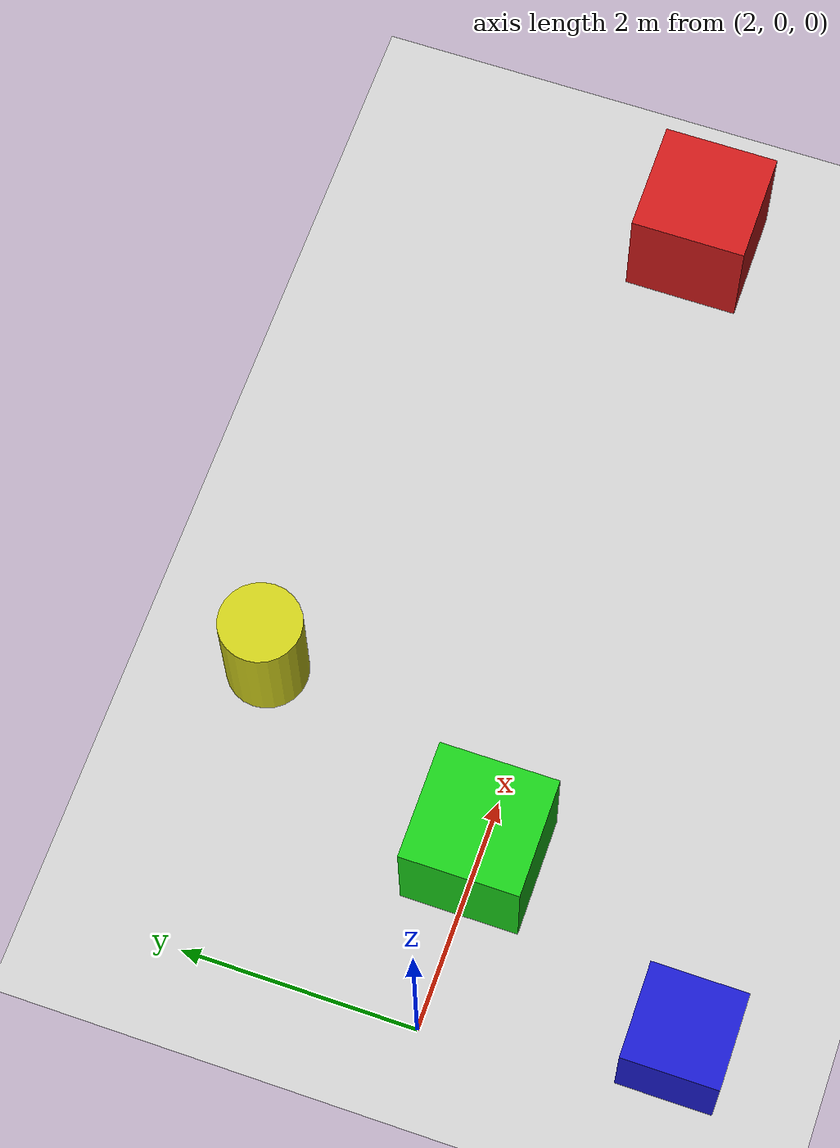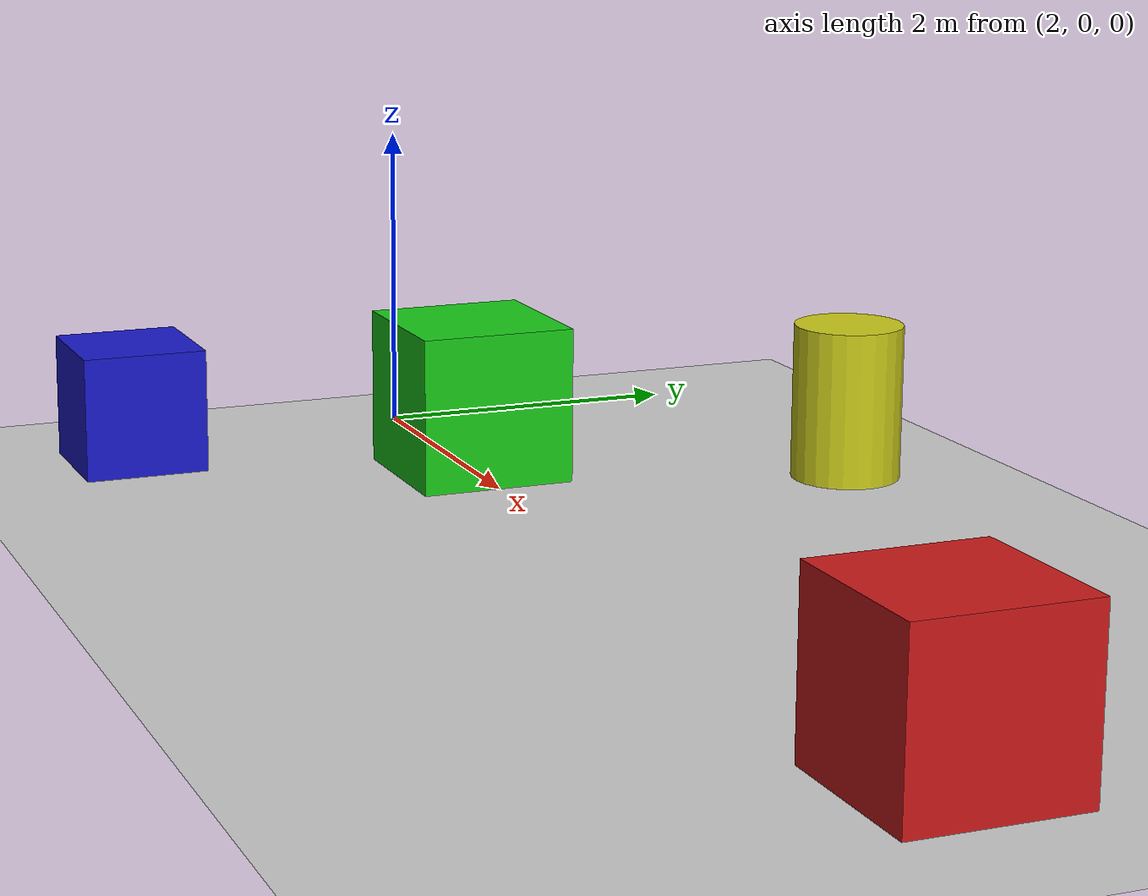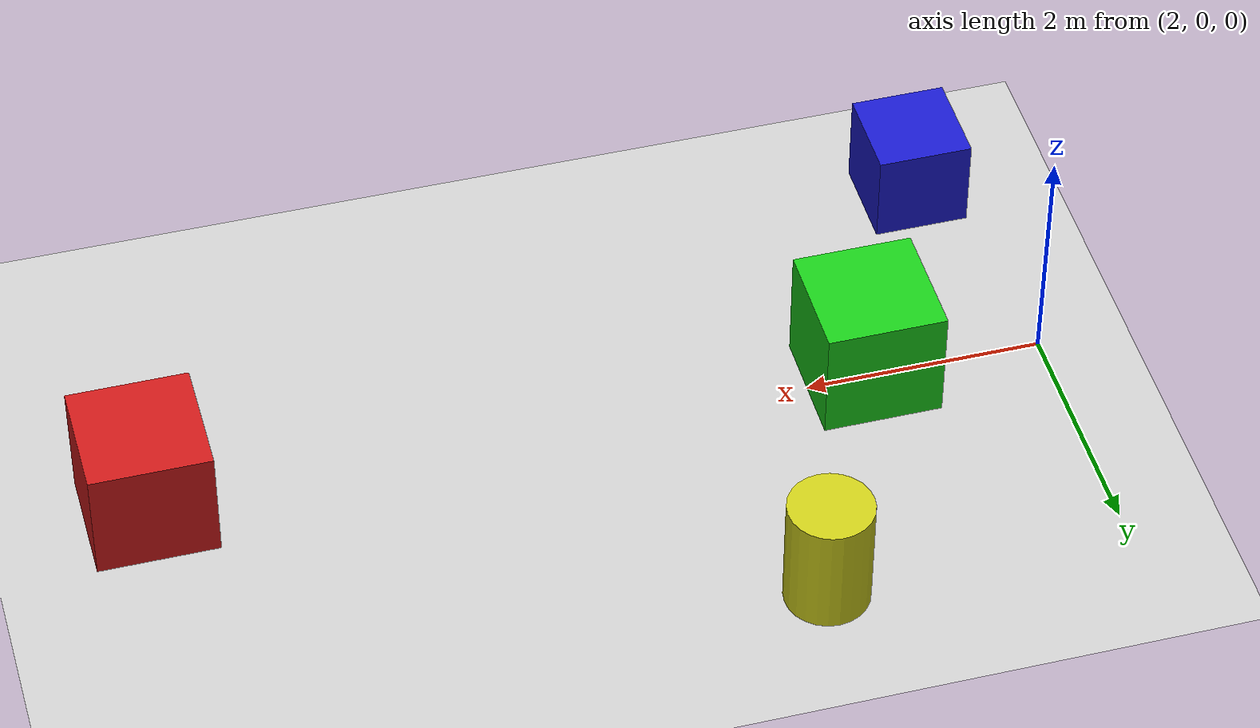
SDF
<?xml version="1.0" ?>
<sdf version="1.6">
  <!-- Minimal world: physics, rendering sensors, IMU system, ground plane. -->
  <world name="msp_world">
    <physics name="1ms" type="ignored">
      <max_step_size>0.001</max_step_size>
      <real_time_factor>1.0</real_time_factor>
    </physics>

    <plugin filename="gz-sim-physics-system" name="gz::sim::systems::Physics"/>
    <plugin filename="gz-sim-user-commands-system" name="gz::sim::systems::UserCommands"/>
    <plugin filename="gz-sim-scene-broadcaster-system" name="gz::sim::systems::SceneBroadcaster"/>
    <plugin filename="gz-sim-imu-system" name="gz::sim::systems::Imu"/>
    <plugin filename="gz-sim-sensors-system" name="gz::sim::systems::Sensors">
      <render_engine>ogre2</render_engine>
    </plugin>

    <light type="directional" name="sun">
      <cast_shadows>true</cast_shadows>
      <pose>0 0 10 0 0 0</pose>
      <diffuse>0.8 0.8 0.8 1</diffuse>
      <specular>0.2 0.2 0.2 1</specular>
      <attenuation>
        <range>1000</range>
        <constant>0.9</constant>
        <linear>0.01</linear>
        <quadratic>0.001</quadratic>
      </attenuation>
      <direction>-0.5 0.1 -0.9</direction>
    </light>

    <model name="ground_plane">
      <static>true</static>
      <link name="link">
        <collision name="collision">
          <geometry>
            <plane>
              <normal>0 0 1</normal>
              <size>50 50</size>
            </plane>
          </geometry>
        </collision>
        <visual name="visual">
          <geometry>
            <plane>
              <normal>0 0 1</normal>
              <size>50 50</size>
            </plane>
          </geometry>
          <material>
            <ambient>0.8 0.8 0.8 1</ambient>
            <diffuse>0.8 0.8 0.8 1</diffuse>
            <specular>0.2 0.2 0.2 1</specular>
          </material>
        </visual>
      </link>
    </model>

    <model name="near_test_box">
      <static>true</static>
      <pose>3.5 0 0.5 0 0 0</pose>
      <link name="link">
        <collision name="collision">
          <geometry>
            <box>
              <size>1 1 1</size>
            </box>
          </geometry>
        </collision>
        <visual name="visual">
          <geometry>
            <box>
              <size>1 1 1</size>
            </box>
          </geometry>
          <material>
            <ambient>0.1 0.8 0.1 1</ambient>
            <diffuse>0.1 0.8 0.1 1</diffuse>
            <specular>0.2 0.2 0.2 1</specular>
          </material>
        </visual>
      </link>
    </model>

    <model name="far_test_box">
      <static>true</static>
      <pose>9.5 0 0.5 0 0 0</pose>
      <link name="link">
        <collision name="collision">
          <geometry>
            <box>
              <size>1 1 1</size>
            </box>
          </geometry>
        </collision>
        <visual name="visual">
          <geometry>
            <box>
              <size>1 1 1</size>
            </box>
          </geometry>
          <material>
            <ambient>0.8 0.1 0.1 1</ambient>
            <diffuse>0.8 0.1 0.1 1</diffuse>
            <specular>0.2 0.2 0.2 1</specular>
          </material>
        </visual>
      </link>
    </model>

    <model name="right_test_box">
      <static>true</static>
      <pose>2.5 -2.0 0.4 0 0 0</pose>
      <link name="link">
        <collision name="collision">
          <geometry>
            <box>
              <size>0.8 0.8 0.8</size>
            </box>
          </geometry>
        </collision>
        <visual name="visual">
          <geometry>
            <box>
              <size>0.8 0.8 0.8</size>
            </box>
          </geometry>
          <material>
            <ambient>0.1 0.1 0.8 1</ambient>
            <diffuse>0.1 0.1 0.8 1</diffuse>
            <specular>0.2 0.2 0.2 1</specular>
          </material>
        </visual>
      </link>
    </model>

    <model name="left_test_cylinder">
      <static>true</static>
      <pose>4.5 2.2 0.5 0 0 0</pose>
      <link name="link">
        <collision name="collision">
          <geometry>
            <cylinder>
              <radius>0.35</radius>
              <length>1.0</length>
            </cylinder>
          </geometry>
        </collision>
        <visual name="visual">
          <geometry>
            <cylinder>
              <radius>0.35</radius>
              <length>1.0</length>
            </cylinder>
          </geometry>
          <material>
            <ambient>0.8 0.8 0.1 1</ambient>
            <diffuse>0.8 0.8 0.1 1</diffuse>
            <specular>0.2 0.2 0.2 1</specular>
          </material>
        </visual>
      </link>
    </model>
  </world>
</sdf>
